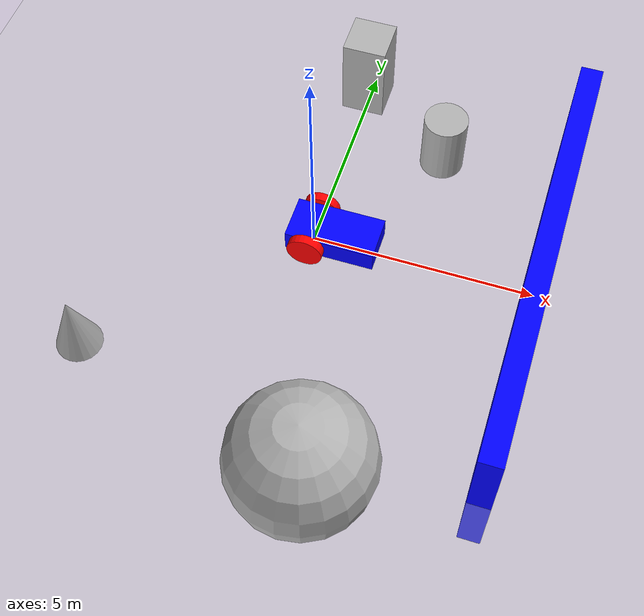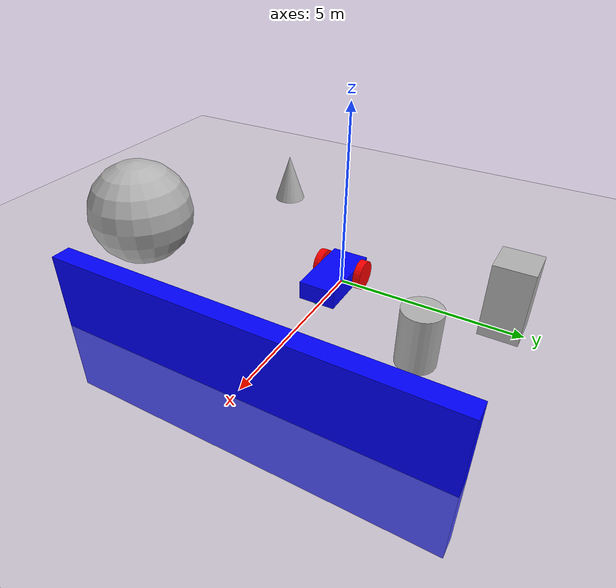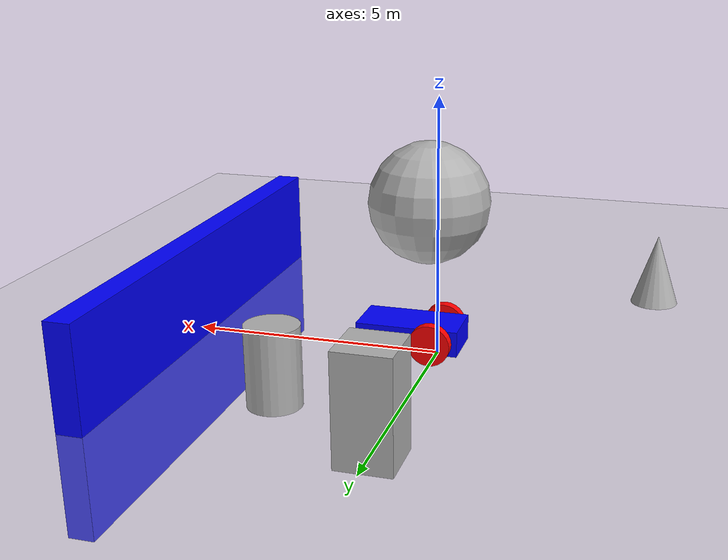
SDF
<sdf version='1.10'>
  <world name='robot_wheeled'>
    <physics name='1ms' type='ignored'>
      <max_step_size>0.001</max_step_size>
      <real_time_factor>1</real_time_factor>
      <real_time_update_rate>1000</real_time_update_rate>
    </physics>
    <plugin name='gz::sim::systems::Physics' filename='gz-sim-physics-system'/>
    <plugin name='gz::sim::systems::UserCommands' filename='gz-sim-user-commands-system'/>
    <plugin name='gz::sim::systems::SceneBroadcaster' filename='gz-sim-scene-broadcaster-system'/>
    <plugin name='gz::sim::systems::Sensors' filename='gz-sim-sensors-system'>
      <render_engine>ogre2</render_engine>
    </plugin>
    <plugin name='gz::sim::systems::Imu' filename='gz-sim-imu-system'/>
    <plugin name='gz::sim::systems::Contact' filename='gz-sim-contact-system'/>
    <plugin name='gz::sim::systems::TriggeredPublisher' filename='gz-sim-triggered-publisher-system'>
      <input type='gz.msgs.Int32' topic='/keyboard/keypress'>
        <match field='data'>16777235</match>
      </input>
      <output type='gz.msgs.Twist' topic='/cmd_vel'>linear: {x: 0.5}, angular: {z: 0.0}</output>
    </plugin>
    <plugin name='gz::sim::systems::TriggeredPublisher' filename='gz-sim-triggered-publisher-system'>
      <input type='gz.msgs.Int32' topic='/keyboard/keypress'>
        <match field='data'>16777237</match>
      </input>
      <output type='gz.msgs.Twist' topic='/cmd_vel'>linear: {x: -0.5}, angular: {z: 0.0}</output>
    </plugin>
    <plugin name='gz::sim::systems::TriggeredPublisher' filename='gz-sim-triggered-publisher-system'>
      <input type='gz.msgs.Int32' topic='/keyboard/keypress'>
        <match field='data'>16777234</match>
      </input>
      <output type='gz.msgs.Twist' topic='/cmd_vel'>linear: {x: 0.0}, angular: {z: 0.5}</output>
    </plugin>
    <plugin name='gz::sim::systems::TriggeredPublisher' filename='gz-sim-triggered-publisher-system'>
      <input type='gz.msgs.Int32' topic='/keyboard/keypress'>
        <match field='data'>16777236</match>
      </input>
      <output type='gz.msgs.Twist' topic='/cmd_vel'>linear: {x: 0.0}, angular: {z: -0.5}</output>
    </plugin>
    <plugin name='gz::sim::systems::TriggeredPublisher' filename='gz-sim-triggered-publisher-system'>
      <input type='gz.msgs.Int32' topic='/keyboard/keypress'>
        <match field='data'>83</match>
      </input>
      <output type='gz.msgs.Twist' topic='/cmd_vel'>linear: {x: 0.0}, angular: {z: 0.0}</output>
    </plugin>
    <plugin name='gz::sim::systems::TriggeredPublisher' filename='gz-sim-triggered-publisher-system'>
      <input type='gz.msgs.Boolean' topic='/wall/touched'>
        <match>data: true</match>
      </input>
      <output type='gz.msgs.Twist' topic='/cmd_vel'>linear: {x: 0.0}, angular: {z: 0.0}</output>
    </plugin>
    <gravity>0 0 -9.8000000000000007</gravity>
    <magnetic_field>5.5644999999999998e-06 2.2875799999999999e-05 -4.2388400000000002e-05</magnetic_field>
    <atmosphere type='adiabatic'/>
    <scene>
      <ambient>0.400000006 0.400000006 0.400000006 1</ambient>
      <background>0.699999988 0.699999988 0.699999988 1</background>
      <shadows>true</shadows>
    </scene>
    <model name='ground_plane'>
      <static>true</static>
      <link name='link'>
        <collision name='collision'>
          <geometry>
            <plane>
              <normal>0 0 1</normal>
              <size>1 1</size>
            </plane>
          </geometry>
          <surface>
            <friction>
              <ode/>
            </friction>
            <bounce/>
            <contact/>
          </surface>
        </collision>
        <visual name='visual'>
          <geometry>
            <plane>
              <normal>0 0 1</normal>
              <size>100 100</size>
            </plane>
          </geometry>
          <material>
            <ambient>0.800000012 0.800000012 0.800000012 1</ambient>
            <diffuse>0.800000012 0.800000012 0.800000012 1</diffuse>
            <specular>0.800000012 0.800000012 0.800000012 1</specular>
          </material>
        </visual>
        <pose>0 0 0 0 0 0</pose>
        <inertial>
          <pose>0 0 0 0 0 0</pose>
          <mass>1</mass>
          <inertia>
            <ixx>1</ixx>
            <ixy>0</ixy>
            <ixz>0</ixz>
            <iyy>1</iyy>
            <iyz>0</iyz>
            <izz>1</izz>
          </inertia>
        </inertial>
        <enable_wind>false</enable_wind>
      </link>
      <pose>0 0 0 0 0 0</pose>
      <self_collide>false</self_collide>
    </model>
    <model name='wall'>
      <static>true</static>
      <pose>5 0 0 0 0 0</pose>
      <link name='box'>
      <inertial>
        <mass>1.14395</mass>
        <inertia>
        <ixx>9.5329169999999994</ixx>
        <ixy>0</ixy>
        <ixz>0</ixz>
        <iyy>0.023831999999999999</iyy>
        <iyz>0</iyz>
        <izz>9.5567489999999999</izz>
        </inertia>
        <pose>0 0 0 0 0 0</pose>
      </inertial>
      <visual name='visual'>
        <geometry>
        <box>
          <size>0.5 10 4</size>
        </box>
        </geometry>
        <material>
        <ambient>0 0 1 1</ambient>
        <diffuse>0 0 1 1</diffuse>
        <specular>0 0 1 1</specular>
        </material>
      </visual>
      <collision name='collision'>
        <geometry>
        <box>
          <size>0.5 10 4</size>
        </box>
        </geometry>
        <surface>
        <friction>
          <ode/>
        </friction>
        <bounce/>
        <contact/>
        </surface>
      </collision>
      <sensor name='sensor_contact' type='contact'>
        <contact>
        <collision>collision</collision>
        <topic>__default_topic__</topic>
        </contact>
      </sensor>
      <pose>0 0 0 0 0 0</pose>
      <enable_wind>false</enable_wind>
      </link>
      <plugin name='gz::sim::systems::TouchPlugin' filename='gz-sim-touchplugin-system'>
      <target>vehicle_blue</target>
      <namespace>wall</namespace>
      <time>0.001</time>
      <enabled>true</enabled>
      </plugin>
      <self_collide>false</self_collide>
    </model>
    <model name='robot' canonical_link='robot_base_link'>
      <pose>0 0 0 0 0 0</pose>
      <plugin name='gz::sim::systems::DiffDrive' filename='gz-sim-diff-drive-system'>
        <left_joint>left_wheel_joint</left_joint>
        <right_joint>right_wheel_joint</right_joint>
        <wheel_separation>1.2</wheel_separation>
        <wheel_radius>0.4</wheel_radius>
        <odom_publish_frequency>1</odom_publish_frequency>
        <topic>cmd_vel</topic>
      </plugin>
      <link name='robot_base_link'>
        <pose>0.5 0 0.40000000000000002 0 0 0</pose>
        <inertial>
          <mass>1.14395</mass>
          <inertia>
            <ixx>0.095328999999999997</ixx>
            <ixy>0</ixy>
            <ixz>0</ixz>
            <iyy>0.38131700000000002</iyy>
            <iyz>0</iyz>
            <izz>0.47664600000000001</izz>
          </inertia>
          <pose>0 0 0 0 0 0</pose>
        </inertial>
        <sensor name='imu_sensor' type='imu'>
          <pose>0 0 0 0 0 0</pose>
          <topic>imu</topic>
          <update_rate>1</update_rate>
          <enable_metrics>false</enable_metrics>
          <imu>
            <orientation_reference_frame>
              <localization>CUSTOM</localization>
              <custom_rpy>0 0 0</custom_rpy>
              <grav_dir_x>1 0 0</grav_dir_x>
            </orientation_reference_frame>
            <angular_velocity>
              <x>
                <noise type='none'>
                  <mean>0</mean>
                  <stddev>0</stddev>
                  <bias_mean>0</bias_mean>
                  <bias_stddev>0</bias_stddev>
                  <dynamic_bias_stddev>0</dynamic_bias_stddev>
                  <dynamic_bias_correlation_time>0</dynamic_bias_correlation_time>
                  <precision>0</precision>
                </noise>
              </x>
              <y>
                <noise type='none'>
                  <mean>0</mean>
                  <stddev>0</stddev>
                  <bias_mean>0</bias_mean>
                  <bias_stddev>0</bias_stddev>
                  <dynamic_bias_stddev>0</dynamic_bias_stddev>
                  <dynamic_bias_correlation_time>0</dynamic_bias_correlation_time>
                  <precision>0</precision>
                </noise>
              </y>
              <z>
                <noise type='none'>
                  <mean>0</mean>
                  <stddev>0</stddev>
                  <bias_mean>0</bias_mean>
                  <bias_stddev>0</bias_stddev>
                  <dynamic_bias_stddev>0</dynamic_bias_stddev>
                  <dynamic_bias_correlation_time>0</dynamic_bias_correlation_time>
                  <precision>0</precision>
                </noise>
              </z>
            </angular_velocity>
            <linear_acceleration>
              <x>
                <noise type='none'>
                  <mean>0</mean>
                  <stddev>0</stddev>
                  <bias_mean>0</bias_mean>
                  <bias_stddev>0</bias_stddev>
                  <dynamic_bias_stddev>0</dynamic_bias_stddev>
                  <dynamic_bias_correlation_time>0</dynamic_bias_correlation_time>
                  <precision>0</precision>
                </noise>
              </x>
              <y>
                <noise type='none'>
                  <mean>0</mean>
                  <stddev>0</stddev>
                  <bias_mean>0</bias_mean>
                  <bias_stddev>0</bias_stddev>
                  <dynamic_bias_stddev>0</dynamic_bias_stddev>
                  <dynamic_bias_correlation_time>0</dynamic_bias_correlation_time>
                  <precision>0</precision>
                </noise>
              </y>
              <z>
                <noise type='none'>
                  <mean>0</mean>
                  <stddev>0</stddev>
                  <bias_mean>0</bias_mean>
                  <bias_stddev>0</bias_stddev>
                  <dynamic_bias_stddev>0</dynamic_bias_stddev>
                  <dynamic_bias_correlation_time>0</dynamic_bias_correlation_time>
                  <precision>0</precision>
                </noise>
              </z>
            </linear_acceleration>
            <enable_orientation>true</enable_orientation>
          </imu>
        </sensor>
        <visual name='visual'>
          <geometry>
            <box>
              <size>2 1 0.5</size>
            </box>
          </geometry>
          <material>
            <ambient>0 0 1 1</ambient>
            <diffuse>0 0 1 1</diffuse>
            <specular>0 0 1 1</specular>
          </material>
        </visual>
        <collision name='collision'>
          <geometry>
            <box>
              <size>2 1 0.5</size>
            </box>
          </geometry>
          <surface>
            <friction>
              <ode/>
            </friction>
            <bounce/>
            <contact/>
          </surface>
        </collision>
        <sensor name='gpu_lidar' type='gpu_lidar'>
          <pose>0.80000000000000004 0 0.5 0 0 0</pose>
          <topic>lidar</topic>
          <update_rate>10</update_rate>
          <enable_metrics>false</enable_metrics>
          <lidar>
            <scan>
              <horizontal>
                <samples>1280</samples>
                <resolution>1</resolution>
                <min_angle>-1.396263</min_angle>
                <max_angle>1.396263</max_angle>
              </horizontal>
              <vertical>
                <samples>64</samples>
                <min_angle>-0.087266499999999997</min_angle>
                <max_angle>0.087266499999999997</max_angle>
                <resolution>0.01</resolution>
              </vertical>
            </scan>
            <range>
              <min>0.080000000000000002</min>
              <max>10</max>
              <resolution>0.01</resolution>
            </range>
            <noise>
              <type>none</type>
              <mean>0</mean>
              <stddev>0</stddev>
            </noise>
            <visibility_mask>4294967295</visibility_mask>
          </lidar>
        </sensor>
        <enable_wind>false</enable_wind>
      </link>
      <link name='left_wheel'>
        <pose>0 0.59999999999999998 0.40000000000000002 -1.5706999999999995 0 0</pose>
        <inertial>
          <mass>1</mass>
          <inertia>
            <ixx>0.043333000000000003</ixx>
            <ixy>0</ixy>
            <ixz>0</ixz>
            <iyy>0.043333000000000003</iyy>
            <iyz>0</iyz>
            <izz>0.080000000000000002</izz>
          </inertia>
          <pose>0 0 0 0 0 0</pose>
        </inertial>
        <visual name='visual'>
          <geometry>
            <cylinder>
              <radius>0.40000000000000002</radius>
              <length>0.20000000000000001</length>
            </cylinder>
          </geometry>
          <material>
            <ambient>1 0 0 1</ambient>
            <diffuse>1 0 0 1</diffuse>
            <specular>1 0 0 1</specular>
          </material>
        </visual>
        <collision name='collision'>
          <geometry>
            <cylinder>
              <radius>0.40000000000000002</radius>
              <length>0.20000000000000001</length>
            </cylinder>
          </geometry>
          <surface>
            <friction>
              <ode/>
            </friction>
            <bounce/>
            <contact/>
          </surface>
        </collision>
        <enable_wind>false</enable_wind>
      </link>
      <link name='right_wheel'>
        <pose>0 -0.59999999999999998 0.40000000000000002 -1.5706999999999995 0 0</pose>
        <inertial>
          <mass>1</mass>
          <inertia>
            <ixx>0.043333000000000003</ixx>
            <ixy>0</ixy>
            <ixz>0</ixz>
            <iyy>0.043333000000000003</iyy>
            <iyz>0</iyz>
            <izz>0.080000000000000002</izz>
          </inertia>
          <pose>0 0 0 0 0 0</pose>
        </inertial>
        <visual name='visual'>
          <geometry>
            <cylinder>
              <radius>0.40000000000000002</radius>
              <length>0.20000000000000001</length>
            </cylinder>
          </geometry>
          <material>
            <ambient>1 0 0 1</ambient>
            <diffuse>1 0 0 1</diffuse>
            <specular>1 0 0 1</specular>
          </material>
        </visual>
        <collision name='collision'>
          <geometry>
            <cylinder>
              <radius>0.40000000000000002</radius>
              <length>0.20000000000000001</length>
            </cylinder>
          </geometry>
          <surface>
            <friction>
              <ode/>
            </friction>
            <bounce/>
            <contact/>
          </surface>
        </collision>
        <enable_wind>false</enable_wind>
      </link>
      <frame name='caster_frame' attached_to='robot_base_link'>
        <pose>0.80000000000000004 0 -0.20000000000000001 0 0 0</pose>
      </frame>
      <frame name='lidar_frame' attached_to='robot_base_link'>
        <pose>0.80000000000000004 0 0.5 0 0 0</pose>
      </frame>
      <link name='caster'>
        <pose>1.3 0 0.20000000000000001 0 0 0</pose>
        <inertial>
          <mass>1</mass>
          <inertia>
            <ixx>0.016</ixx>
            <ixy>0</ixy>
            <ixz>0</ixz>
            <iyy>0.016</iyy>
            <iyz>0</iyz>
            <izz>0.016</izz>
          </inertia>
          <pose>0 0 0 0 0 0</pose>
        </inertial>
        <visual name='visual'>
          <geometry>
            <sphere>
              <radius>0.20000000000000001</radius>
            </sphere>
          </geometry>
          <material>
            <ambient>0 1 0 1</ambient>
            <diffuse>0 1 0 1</diffuse>
            <specular>0 1 0 1</specular>
          </material>
        </visual>
        <collision name='collision'>
          <geometry>
            <sphere>
              <radius>0.20000000000000001</radius>
            </sphere>
          </geometry>
          <surface>
            <friction>
              <ode/>
            </friction>
            <bounce/>
            <contact/>
          </surface>
        </collision>
        <enable_wind>false</enable_wind>
      </link>
      <joint name='left_wheel_joint' type='revolute'>
        <pose>0 -2.2204460492503131e-16 0 0 0 0</pose>
        <parent>robot_base_link</parent>
        <child>left_wheel</child>
        <axis>
          <xyz>0 9.6326794747692026e-05 0.99999999536057438</xyz>
          <limit>
            <lower>-1.7976900000000001e+308</lower>
            <upper>1.7976900000000001e+308</upper>
            <effort>inf</effort>
            <velocity>inf</velocity>
            <stiffness>100000000</stiffness>
            <dissipation>1</dissipation>
          </limit>
          <dynamics>
            <spring_reference>0</spring_reference>
            <spring_stiffness>0</spring_stiffness>
            <damping>0</damping>
            <friction>0</friction>
          </dynamics>
        </axis>
      </joint>
      <joint name='right_wheel_joint' type='revolute'>
        <pose>0 1.1102230246251565e-16 -1.1102230246251565e-16 0 0 0</pose>
        <parent>robot_base_link</parent>
        <child>right_wheel</child>
        <axis>
          <xyz>0 9.6326794747692026e-05 0.99999999536057438</xyz>
          <limit>
            <lower>-1.7976900000000001e+308</lower>
            <upper>1.7976900000000001e+308</upper>
            <effort>inf</effort>
            <velocity>inf</velocity>
            <stiffness>100000000</stiffness>
            <dissipation>1</dissipation>
          </limit>
          <dynamics>
            <spring_reference>0</spring_reference>
            <spring_stiffness>0</spring_stiffness>
            <damping>0</damping>
            <friction>0</friction>
          </dynamics>
        </axis>
      </joint>
      <joint name='caster_wheel' type='ball'>
        <parent>robot_base_link</parent>
        <child>caster</child>
        <pose>0 0 0 0 0 0</pose>
      </joint>
      <static>false</static>
      <self_collide>false</self_collide>
    </model>
    <model name='cylinder'>
      <pose>2.1666526631419738 2.9931535105338245 0.75 0 0 0</pose>
      <link name='cylinder_link'>
        <inertial>
          <inertia>
            <ixx>0.14580000000000001</ixx>
            <ixy>0</ixy>
            <ixz>0</ixz>
            <iyy>0.14580000000000001</iyy>
            <iyz>0</iyz>
            <izz>0.125</izz>
          </inertia>
          <mass>1</mass>
          <pose>0 0 0 0 0 0</pose>
        </inertial>
        <collision name='cylinder_collision'>
          <geometry>
            <cylinder>
              <radius>0.5</radius>
              <length>1.5</length>
            </cylinder>
          </geometry>
          <surface>
            <friction>
              <ode/>
            </friction>
            <bounce/>
            <contact/>
          </surface>
        </collision>
        <visual name='cylinder_visual'>
          <geometry>
            <cylinder>
              <radius>0.5</radius>
              <length>1.5</length>
            </cylinder>
          </geometry>
          <material>
            <ambient>0.300000012 0.300000012 0.300000012 1</ambient>
            <diffuse>0.699999988 0.699999988 0.699999988 1</diffuse>
            <specular>1 1 1 1</specular>
          </material>
        </visual>
        <pose>0 0 0 0 0 0</pose>
        <enable_wind>false</enable_wind>
      </link>
      <static>false</static>
      <self_collide>false</self_collide>
    </model>
    <model name='cone'>
      <pose>-3.8999999999999999 -4 0.75 0 0 0</pose>
      <link name='cone_link'>
        <inertial>
          <inertia>
            <ixx>0.074999999999999997</ixx>
            <ixy>0</ixy>
            <ixz>0</ixz>
            <iyy>0.074999999999999997</iyy>
            <iyz>0</iyz>
            <izz>0.074999999999999997</izz>
          </inertia>
          <mass>1</mass>
          <pose>0 0 0 0 0 0</pose>
        </inertial>
        <collision name='cone_collision'>
          <geometry>
            <cone>
              <radius>0.5</radius>
              <length>1.5</length>
            </cone>
          </geometry>
          <surface>
            <friction>
              <ode/>
            </friction>
            <bounce/>
            <contact/>
          </surface>
        </collision>
        <visual name='cone_visual'>
          <geometry>
            <cone>
              <radius>0.5</radius>
              <length>1.5</length>
            </cone>
          </geometry>
          <material>
            <ambient>0.300000012 0.300000012 0.300000012 1</ambient>
            <diffuse>0.699999988 0.699999988 0.699999988 1</diffuse>
            <specular>1 1 1 1</specular>
          </material>
        </visual>
        <pose>0 0 0 0 0 0</pose>
        <enable_wind>false</enable_wind>
      </link>
      <static>false</static>
      <self_collide>false</self_collide>
    </model>
    <model name='sphere'>
      <pose>1.6400000000000001 -5.6799999999999997 1.4199999999999999 0 0 0</pose>
      <link name='sphere_link'>
        <inertial>
          <inertia>
            <ixx>0.10000000000000001</ixx>
            <ixy>0</ixy>
            <ixz>0</ixz>
            <iyy>0.10000000000000001</iyy>
            <iyz>0</iyz>
            <izz>0.10000000000000001</izz>
          </inertia>
          <mass>1</mass>
          <pose>0 0 0 0 0 0</pose>
        </inertial>
        <collision name='sphere_collision'>
          <geometry>
            <sphere>
              <radius>1.5</radius>
            </sphere>
          </geometry>
          <surface>
            <friction>
              <ode/>
            </friction>
            <bounce/>
            <contact/>
          </surface>
        </collision>
        <visual name='sphere_visual'>
          <geometry>
            <sphere>
              <radius>1.5</radius>
            </sphere>
          </geometry>
          <material>
            <ambient>0.300000012 0.300000012 0.300000012 1</ambient>
            <diffuse>0.699999988 0.699999988 0.699999988 1</diffuse>
            <specular>1 1 1 1</specular>
          </material>
        </visual>
        <pose>0 0 0 0 0 0</pose>
        <enable_wind>false</enable_wind>
      </link>
      <static>false</static>
      <self_collide>false</self_collide>
    </model>
    <model name='box'>
      <pose>-0.066930312928308755 4.4417982452067513 1 0 0 0</pose>
      <link name='box_link'>
        <inertial>
          <inertia>
            <ixx>0.16666</ixx>
            <ixy>0</ixy>
            <ixz>0</ixz>
            <iyy>0.16666</iyy>
            <iyz>0</iyz>
            <izz>0.16666</izz>
          </inertia>
          <mass>1</mass>
          <pose>0 0 0 0 0 0</pose>
        </inertial>
        <collision name='box_collision'>
          <geometry>
            <box>
              <size>1 1 2</size>
            </box>
          </geometry>
          <surface>
            <friction>
              <ode/>
            </friction>
            <bounce/>
            <contact/>
          </surface>
        </collision>
        <visual name='box_visual'>
          <geometry>
            <box>
              <size>1 1 2</size>
            </box>
          </geometry>
          <material>
            <ambient>0.300000012 0.300000012 0.300000012 1</ambient>
            <diffuse>0.699999988 0.699999988 0.699999988 1</diffuse>
            <specular>1 1 1 1</specular>
          </material>
        </visual>
        <pose>0 0 0 0 0 0</pose>
        <enable_wind>false</enable_wind>
      </link>
      <static>false</static>
      <self_collide>false</self_collide>
    </model>
    <light name='sun' type='directional'>
      <pose>0 0 10 0 0 0</pose>
      <cast_shadows>true</cast_shadows>
      <intensity>1</intensity>
      <direction>-0.5 0.10000000000000001 -0.90000000000000002</direction>
      <diffuse>0.800000012 0.800000012 0.800000012 1</diffuse>
      <specular>0.200000003 0.200000003 0.200000003 1</specular>
      <attenuation>
        <range>1000</range>
        <linear>0.01</linear>
        <constant>0.90000000000000002</constant>
        <quadratic>0.001</quadratic>
      </attenuation>
      <spot>
        <inner_angle>0</inner_angle>
        <outer_angle>0</outer_angle>
        <falloff>0</falloff>
      </spot>
    </light>
  </world>
</sdf>
